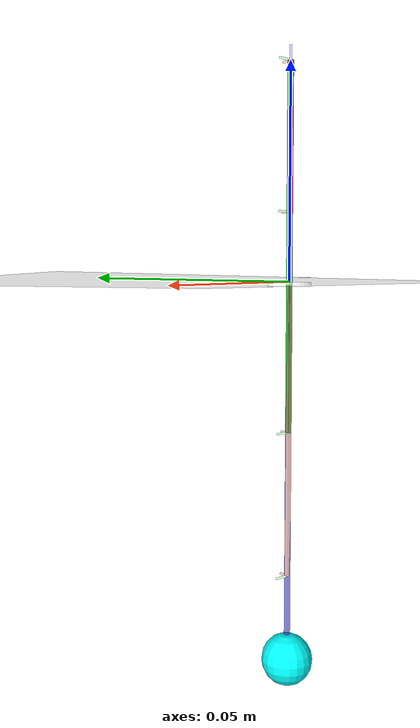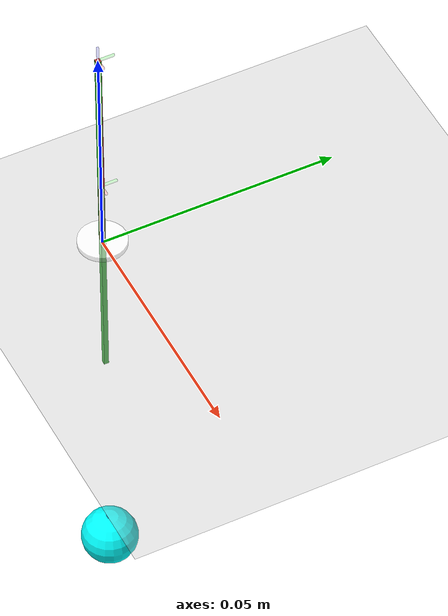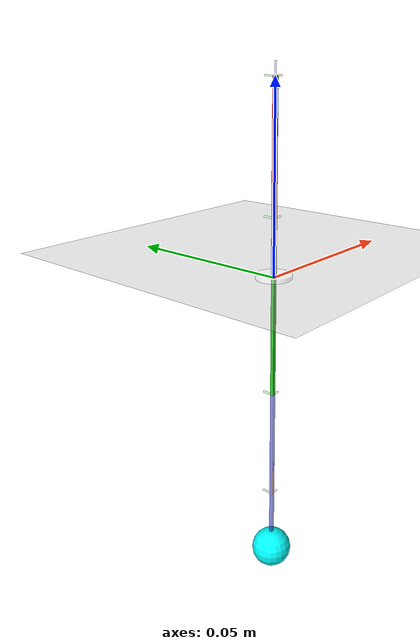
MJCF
<mujoco model="spatial_parallelogram_parallel_training_v2">
  <compiler angle="degree" coordinate="local" eulerseq="xyz" inertiafromgeom="true"/>

  <option timestep="0.001" gravity="0 0 -9.81" iterations="50" tolerance="1e-10"/>

  <keyframe>
    <!-- Home Position -->
    <key name="home"
         qpos="1.57 0 0 0   3.14 0 0 0"
         ctrl="1.57 0 3.14 0"/>
  </keyframe>

  <visual>
    <headlight diffuse="0.4 0.4 0.4" ambient="0.2 0.2 0.2" specular="0.1 0.1 0.1"/>
    <rgba haze="0.15 0.25 0.35 1"/>
    <global azimuth="120" elevation="-20"/>
  </visual>

  <default>
    <!-- 连杆外观：极细 (0.0005)，透明度 0.6 -->
    <geom type="box" rgba="0.7 0.7 0.7 0.6" contype="0" conaffinity="0"/>
    <joint damping="0.05" armature="0.01" frictionloss="0.01"/>

    <!--
      ★坐标轴样式★
      长度保留 1/3: size 0.0008
      透明度 0.1
    -->
    <default class="viz_axis">
        <geom type="box" size="0.0008 0.0002 0.0002" contype="0" conaffinity="0" rgba="1 1 1 0.1"/>
    </default>
  </default>

  <asset>
    <texture type="skybox" builtin="gradient" rgb1="0.3 0.5 0.7" rgb2="0 0 0" width="512" height="3072"/>
    <texture type="2d" name="groundplane" builtin="checker" rgb1="0.2 0.3 0.4" rgb2="0.1 0.2 0.3" width="100" height="100"/>
    <material name="groundplane" texture="groundplane" texrepeat="10 10"/>
  </asset>

  <worldbody>
    <geom name="floor" size="0 0 .05" type="plane" material="groundplane" condim="3"/>
    <light pos="0 0 3" dir="0 0 -1" directional="true" castshadow="true" diffuse="0.8 0.8 0.8" specular="0.3 0.3 0.3"/>

    <body name="World_Origin_Marker" pos="0 0 0">
        <geom type="cylinder" size="0.005 0.001" rgba="1 1 1 0.5" contype="0" conaffinity="0"/>
    </body>

    <body name="Mechanism_Base" pos="0 0 0.05">

        <!-- Frame_O: 尺寸和位置缩小至 1/3 -->
        <body name="Frame_O" pos="0 0 0">
            <geom class="viz_axis" pos="0.0017 0 0" rgba="1 0 0 0.1"/>
            <geom class="viz_axis" pos="0 0.0017 0" size="0.0002 0.0017 0.0002" rgba="0 1 0 0.1"/>
            <geom class="viz_axis" pos="0 0 0.0017" size="0.0002 0.0002 0.0017" rgba="0 0 1 0.1"/>
        </body>

        <!-- ==================== OA Chain ==================== -->
        <body name="Link_OA_Chain" pos="0 0 0">
          <joint name="OA_active_x"  type="hinge" axis="1 0 0" range="90 230" damping="0.5"/>
          <joint name="OA_passive_z" type="hinge" axis="0 0 1" range="-180 180" damping="0.1"/>
          <joint name="OA_active_y"  type="hinge" axis="0 1 0" range="-16 16" damping="0.5"/>

          <!-- 连杆尺寸减为 0.0005 -->
          <geom name="geom_OA" fromto="0 0 0  0 0 -0.034" size="0.0005" rgba="0.8 0.2 0.2 1"/>

          <body name="Link_AC" pos="0 0 -0.034">
            <!-- Frame_A: 缩小至 1/3 -->
            <body name="Frame_A" pos="0 0 0">
                <geom class="viz_axis" pos="0.0017 0 0" rgba="1 0 0 0.1"/>
                <geom class="viz_axis" pos="0 0.0017 0" size="0.0002 0.0017 0.0002" rgba="0 1 0 0.1"/>
                <geom class="viz_axis" pos="0 0 0.0017" size="0.0002 0.0002 0.0017" rgba="0 0 1 0.1"/>
            </body>
            <joint name="A_passive_x" type="hinge" axis="1 0 0" damping="0.1"/>

            <geom name="geom_AC" fromto="0 0 0  0 0 -0.085" size="0.0005" rgba="0.8 0.5 0.5 0.6"/>

            <site name="site_C_pivot_A" pos="0 0 -0.085" size="0.005" rgba="1 1 0 0"/>
            <site name="site_C_axis_A" pos="0.02 0 -0.085" size="0.003" rgba="1 0.5 0 0"/>

            <!-- Frame_C_from_A: 缩小至 1/3 -->
            <body name="Frame_C_from_A" pos="0 0 -0.085">
                <geom class="viz_axis" pos="0.0017 0 0" rgba="1 0 0 0.1"/>
                <geom class="viz_axis" pos="0 0.0017 0" size="0.0002 0.0017 0.0002" rgba="0 1 0 0.1"/>
                <geom class="viz_axis" pos="0 0 0.0017" size="0.0002 0.0002 0.0017" rgba="0 0 1 0.1"/>
            </body>
          </body>
        </body>

        <!-- ==================== OB Chain ==================== -->
        <body name="Link_OB_Chain" pos="0 0 0">
          <joint name="OB_active_x"  type="hinge" axis="1 0 0" range="113 254" damping="0.5"/>
          <joint name="OB_passive_z" type="hinge" axis="0 0 1" range="-180 180" damping="0.1"/>
          <joint name="OB_active_y"  type="hinge" axis="0 1 0" range="-16 16" damping="0.5"/>

          <geom name="geom_OB" fromto="0 0 0  0 0 -0.085" size="0.0005" rgba="0.2 0.8 0.2 1"/>

          <body name="Link_BCP" pos="0 0 -0.085">
            <!-- Frame_B: 缩小至 1/3 -->
            <body name="Frame_B" pos="0 0 0">
                <geom class="viz_axis" pos="0.0017 0 0" rgba="1 0 0 0.1"/>
                <geom class="viz_axis" pos="0 0.0017 0" size="0.0002 0.0017 0.0002" rgba="0 1 0 0.1"/>
                <geom class="viz_axis" pos="0 0 0.0017" size="0.0002 0.0002 0.0017" rgba="0 0 1 0.1"/>
            </body>
            <joint name="B_passive_x" type="hinge" axis="1 0 0" damping="0.1"/>

            <geom name="geom_BP" fromto="0 0 0  0 0 -0.054" size="0.0005" rgba="0.2 0.2 0.8 0.6"/>

            <site name="site_C_pivot_B" pos="0 0 -0.034" size="0.005" rgba="1 1 0 0"/>
            <site name="site_C_axis_B" pos="0.02 0 -0.034" size="0.003" rgba="1 0.5 0 0"/>

            <!-- Frame_C_from_B: 缩小至 1/3 -->
            <body name="Frame_C_from_B" pos="0 0 -0.034">
                <geom class="viz_axis" pos="0.0017 0 0" rgba="1 0 0 0.1"/>
                <geom class="viz_axis" pos="0 0.0017 0" size="0.0002 0.0017 0.0002" rgba="0 1 0 0.1"/>
                <geom class="viz_axis" pos="0 0 0.0017" size="0.0002 0.0002 0.0017" rgba="0 0 1 0.1"/>
            </body>

            <site name="tip_P" pos="0 0 -0.054" size="0.006" rgba="0 1 1 1"/>
            <!-- Frame_P: 缩小至 1/3 -->
            <body name="Frame_P" pos="0 0 -0.054">
                <geom class="viz_axis" pos="0.0017 0 0" rgba="1 0 0 0.1"/>
                <geom class="viz_axis" pos="0 0.0017 0" size="0.0002 0.0017 0.0002" rgba="0 1 0 0.1"/>
                <geom class="viz_axis" pos="0 0 0.0017" size="0.0002 0.0002 0.0017" rgba="0 0 1 0.1"/>
            </body>
          </body>
        </body>
    </body>
  </worldbody>

  <equality>
    <connect name="C_pivot" site1="site_C_pivot_A" site2="site_C_pivot_B" solimp="0.9 0.95 0.001" solref="0.02 1"/>
    <connect name="C_axis"  site1="site_C_axis_A"  site2="site_C_axis_B"  solimp="0.9 0.95 0.001" solref="0.02 1"/>
  </equality>

  <actuator>
    <position name="act_OA_x" joint="OA_active_x" kp="10" kv="1" ctrlrange="1.57 4.02"/>
    <position name="act_OA_y" joint="OA_active_y" kp="10" kv="1" ctrlrange="-0.28 0.28"/>

    <position name="act_OB_x" joint="OB_active_x" kp="10" kv="1" ctrlrange="1.97 4.44"/>
    <position name="act_OB_y" joint="OB_active_y" kp="10" kv="1" ctrlrange="-0.28 0.28"/>
  </actuator>

</mujoco>
